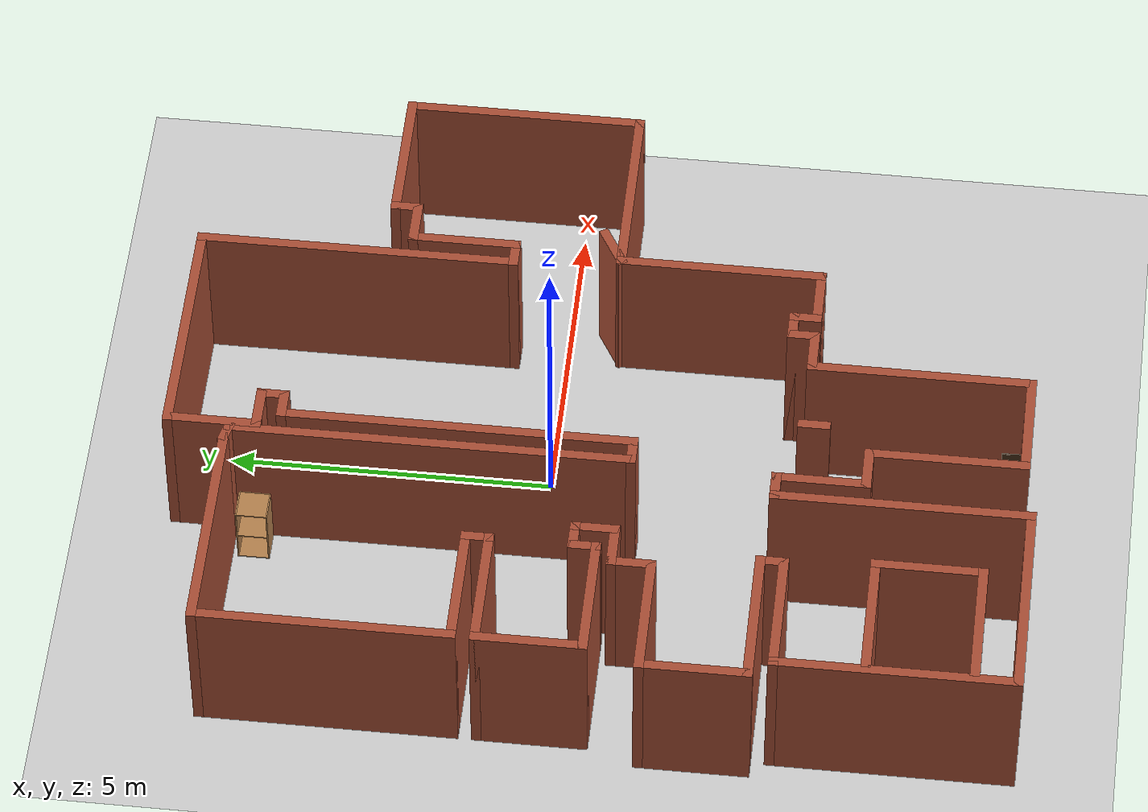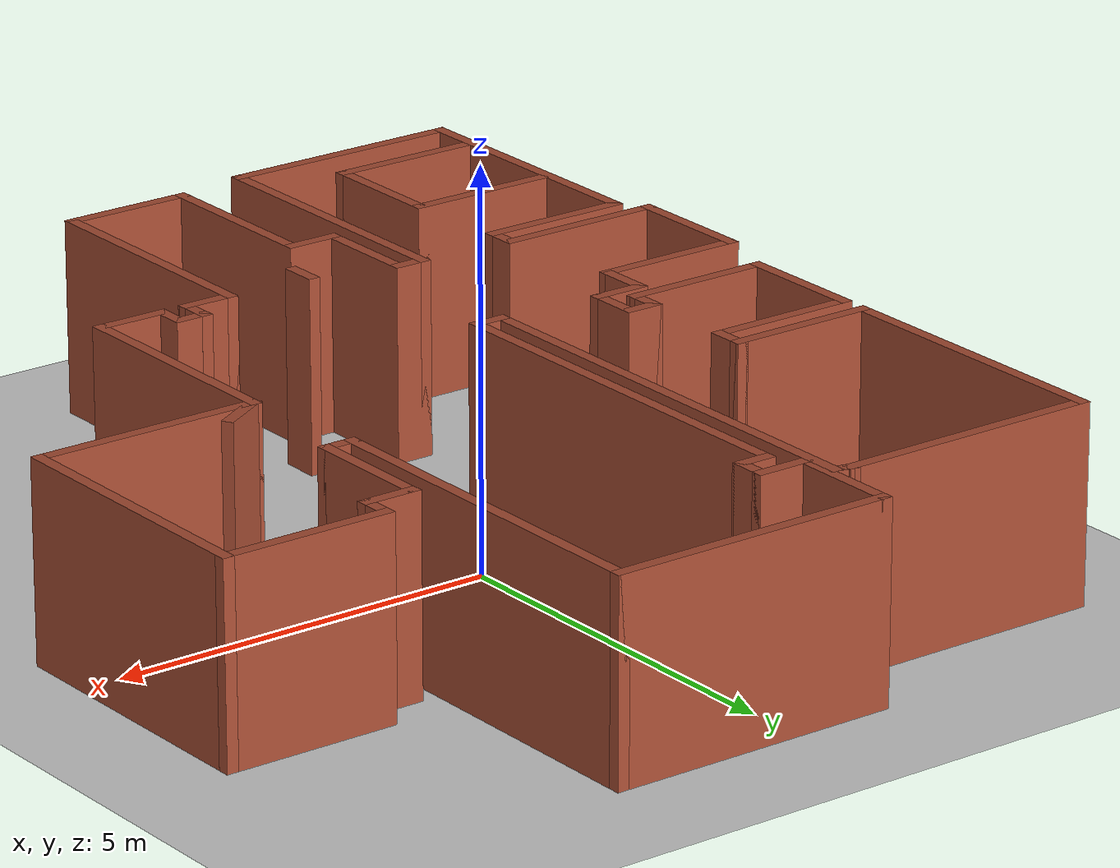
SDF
<sdf version="1.6">
 <world name="default">
  <light name="sun" type="directional">
   <pose>0 0 10 0 -0 0</pose>
   <diffuse>0.8 0.8 0.8 1</diffuse>
   <specular>0.2 0.2 0.2 1</specular>
   <attenuation>
    <range>1000</range>
    <constant>0.9</constant>
    <linear>0.01</linear>
    <quadratic>0.001</quadratic>
   </attenuation>
   <direction>-0.5 0.1 -0.9</direction>
  </light>
  <model name="ground_plane">
   <static>1</static>
   <link name="link">
    <collision name="collision">
     <geometry><plane><normal>0 0 1</normal><size>100 100</size></plane></geometry>
     <surface>
      <contact><collide_bitmask>65535</collide_bitmask></contact>
      <friction><ode><mu>100</mu><mu2>50</mu2></ode></friction>
     </surface>
    </collision>
    <visual name="visual">
     <cast_shadows>0</cast_shadows>
     <geometry><plane><normal>0 0 1</normal><size>100 100</size></plane></geometry>
     <material>
      <script><uri>file://media/materials/scripts/gazebo.material</uri><name>Gazebo/Grey</name></script>
     </material>
    </visual>
   </link>
  </model>
  <gravity>0 0 -9.8</gravity>
  <magnetic_field>6e-06 2.3e-05 -4.2e-05</magnetic_field>
  <atmosphere type="adiabatic"/>
  <physics name="default_physics" default="0" type="ode">
   <max_step_size>0.001</max_step_size>
   <real_time_factor>1</real_time_factor>
   <real_time_update_rate>1000</real_time_update_rate>
  </physics>
  <scene><ambient>0.4 0.4 0.4 1</ambient><background>0.7 0.7 0.7 1</background><shadows>1</shadows></scene>
  <audio><device>default</device></audio>
  <spherical_coordinates>
   <surface_model>EARTH_WGS84</surface_model>
   <latitude_deg>0</latitude_deg>
   <longitude_deg>0</longitude_deg>
   <elevation>0</elevation>
   <heading_deg>0</heading_deg>
  </spherical_coordinates>
  <model name="map_100">
   <pose>0.167545 -0.862773 0 0 -0 0</pose>
   <link name="Wall_0">
    <collision name="Wall_0_Collision">
     <geometry><box><size>3.5 0.15 2.5</size></box></geometry>
     <pose>0 0 1.25 0 -0 0</pose>
    </collision>
    <visual name="Wall_0_Visual">
     <pose>0 0 1.25 0 -0 0</pose>
     <geometry><box><size>3.5 0.15 2.5</size></box></geometry>
     <material>
      <script><uri>file://media/materials/scripts/gazebo.material</uri><name>Gazebo/Bricks</name></script>
      <ambient>1 1 1 1</ambient>
     </material>
     <meta><layer>0</layer></meta>
    </visual>
    <pose>-3.35 5.65 0 0 -0 3.14159</pose>
   </link>
   <link name="Wall_10">
    <collision name="Wall_10_Collision">
     <geometry><box><size>0.5 0.15 2.5</size></box></geometry>
     <pose>0 0 1.25 0 -0 0</pose>
    </collision>
    <visual name="Wall_10_Visual">
     <pose>0 0 1.25 0 -0 0</pose>
     <geometry><box><size>0.5 0.15 2.5</size></box></geometry>
     <material>
      <script><uri>file://media/materials/scripts/gazebo.material</uri><name>Gazebo/Bricks</name></script>
      <ambient>1 1 1 1</ambient>
     </material>
     <meta><layer>0</layer></meta>
    </visual>
    <pose>-3.175 1.625 0 0 -0 -1.5708</pose>
   </link>
   <link name="Wall_11">
    <collision name="Wall_11_Collision">
     <geometry><box><size>2 0.15 2.5</size></box></geometry>
     <pose>0 0 1.25 0 -0 0</pose>
    </collision>
    <visual name="Wall_11_Visual">
     <pose>0 0 1.25 0 -0 0</pose>
     <geometry><box><size>2 0.15 2.5</size></box></geometry>
     <material>
      <script><uri>file://media/materials/scripts/gazebo.material</uri><name>Gazebo/Bricks</name></script>
      <ambient>1 1 1 1</ambient>
     </material>
     <meta><layer>0</layer></meta>
    </visual>
    <pose>-4.1 1.45 0 0 -0 3.14159</pose>
   </link>
   <link name="Wall_12">
    <collision name="Wall_12_Collision">
     <geometry><box><size>1.75 0.15 2.5</size></box></geometry>
     <pose>0 0 1.25 0 -0 0</pose>
    </collision>
    <visual name="Wall_12_Visual">
     <pose>0 0 1.25 0 -0 0</pose>
     <geometry><box><size>1.75 0.15 2.5</size></box></geometry>
     <material>
      <script><uri>file://media/materials/scripts/gazebo.material</uri><name>Gazebo/Bricks</name></script>
      <ambient>1 1 1 1</ambient>
     </material>
     <meta><layer>0</layer></meta>
    </visual>
    <pose>-5.025 0.65 0 0 -0 -1.5708</pose>
   </link>
   <link name="Wall_13">
    <collision name="Wall_13_Collision">
     <geometry><box><size>2 0.15 2.5</size></box></geometry>
     <pose>0 0 1.25 0 -0 0</pose>
    </collision>
    <visual name="Wall_13_Visual">
     <pose>0 0 1.25 0 -0 0</pose>
     <geometry><box><size>2 0.15 2.5</size></box></geometry>
     <material>
      <script><uri>file://media/materials/scripts/gazebo.material</uri><name>Gazebo/Bricks</name></script>
      <ambient>1 1 1 1</ambient>
     </material>
     <meta><layer>0</layer></meta>
    </visual>
    <pose>-4.1 -0.15 0 0 -0 0</pose>
   </link>
   <link name="Wall_14">
    <collision name="Wall_14_Collision">
     <geometry><box><size>0.5 0.15 2.5</size></box></geometry>
     <pose>0 0 1.25 0 -0 0</pose>
    </collision>
    <visual name="Wall_14_Visual">
     <pose>0 0 1.25 0 -0 0</pose>
     <geometry><box><size>0.5 0.15 2.5</size></box></geometry>
     <material>
      <script><uri>file://media/materials/scripts/gazebo.material</uri><name>Gazebo/Bricks</name></script>
      <ambient>1 1 1 1</ambient>
     </material>
     <meta><layer>0</layer></meta>
    </visual>
    <pose>-3.175 0.025 0 0 -0 1.5708</pose>
   </link>
   <link name="Wall_15">
    <collision name="Wall_15_Collision">
     <geometry><box><size>0.5 0.15 2.5</size></box></geometry>
     <pose>0 0 1.25 0 -0 0</pose>
    </collision>
    <visual name="Wall_15_Visual">
     <pose>0 0 1.25 0 -0 0</pose>
     <geometry><box><size>0.5 0.15 2.5</size></box></geometry>
     <material>
      <script><uri>file://media/materials/scripts/gazebo.material</uri><name>Gazebo/Bricks</name></script>
      <ambient>1 1 1 1</ambient>
     </material>
     <meta><layer>0</layer></meta>
    </visual>
    <pose>-3 0.2 0 0 -0 0</pose>
   </link>
   <link name="Wall_16">
    <collision name="Wall_16_Collision">
     <geometry><box><size>0.75 0.15 2.5</size></box></geometry>
     <pose>0 0 1.25 0 -0 0</pose>
    </collision>
    <visual name="Wall_16_Visual">
     <pose>0 0 1.25 0 -0 0</pose>
     <geometry><box><size>0.75 0.15 2.5</size></box></geometry>
     <material>
      <script><uri>file://media/materials/scripts/gazebo.material</uri><name>Gazebo/Bricks</name></script>
      <ambient>1 1 1 1</ambient>
     </material>
     <meta><layer>0</layer></meta>
    </visual>
    <pose>-2.825 -0.1 0 0 -0 -1.5708</pose>
   </link>
   <link name="Wall_17">
    <collision name="Wall_17_Collision">
     <geometry><box><size>0.75 0.15 2.5</size></box></geometry>
     <pose>0 0 1.25 0 -0 0</pose>
    </collision>
    <visual name="Wall_17_Visual">
     <pose>0 0 1.25 0 -0 0</pose>
     <geometry><box><size>0.75 0.15 2.5</size></box></geometry>
     <material>
      <script><uri>file://media/materials/scripts/gazebo.material</uri><name>Gazebo/Bricks</name></script>
      <ambient>1 1 1 1</ambient>
     </material>
     <meta><layer>0</layer></meta>
    </visual>
    <pose>-3.125 -0.4 0 0 -0 3.14159</pose>
   </link>
   <link name="Wall_18">
    <collision name="Wall_18_Collision">
     <geometry><box><size>0.75 0.15 2.5</size></box></geometry>
     <pose>0 0 1.25 0 -0 0</pose>
    </collision>
    <visual name="Wall_18_Visual">
     <pose>0 0 1.25 0 -0 0</pose>
     <geometry><box><size>0.75 0.15 2.5</size></box></geometry>
     <material>
      <script><uri>file://media/materials/scripts/gazebo.material</uri><name>Gazebo/Bricks</name></script>
      <ambient>1 1 1 1</ambient>
     </material>
     <meta><layer>0</layer></meta>
    </visual>
    <pose>-3.425 -0.7 0 0 -0 -1.5708</pose>
   </link>
   <link name="Wall_19">
    <collision name="Wall_19_Collision">
     <geometry><box><size>2 0.15 2.5</size></box></geometry>
     <pose>0 0 1.25 0 -0 0</pose>
    </collision>
    <visual name="Wall_19_Visual">
     <pose>0 0 1.25 0 -0 0</pose>
     <geometry><box><size>2 0.15 2.5</size></box></geometry>
     <material>
      <script><uri>file://media/materials/scripts/gazebo.material</uri><name>Gazebo/Bricks</name></script>
      <ambient>1 1 1 1</ambient>
     </material>
     <meta><layer>0</layer></meta>
    </visual>
    <pose>-4.35 -1 0 0 -0 3.14159</pose>
   </link>
   <link name="Wall_20">
    <collision name="Wall_20_Collision">
     <geometry><box><size>1.75 0.15 2.5</size></box></geometry>
     <pose>0 0 1.25 0 -0 0</pose>
    </collision>
    <visual name="Wall_20_Visual">
     <pose>0 0 1.25 0 -0 0</pose>
     <geometry><box><size>1.75 0.15 2.5</size></box></geometry>
     <material>
      <script><uri>file://media/materials/scripts/gazebo.material</uri><name>Gazebo/Bricks</name></script>
      <ambient>1 1 1 1</ambient>
     </material>
     <meta><layer>0</layer></meta>
    </visual>
    <pose>-5.275 -1.8 0 0 -0 -1.5708</pose>
   </link>
   <link name="Wall_21">
    <collision name="Wall_21_Collision">
     <geometry><box><size>2.25 0.15 2.5</size></box></geometry>
     <pose>0 0 1.25 0 -0 0</pose>
    </collision>
    <visual name="Wall_21_Visual">
     <pose>0 0 1.25 0 -0 0</pose>
     <geometry><box><size>2.25 0.15 2.5</size></box></geometry>
     <material>
      <script><uri>file://media/materials/scripts/gazebo.material</uri><name>Gazebo/Bricks</name></script>
      <ambient>1 1 1 1</ambient>
     </material>
     <meta><layer>0</layer></meta>
    </visual>
    <pose>-4.225 -2.6 0 0 -0 0</pose>
   </link>
   <link name="Wall_22">
    <collision name="Wall_22_Collision">
     <geometry><box><size>0.5 0.15 2.5</size></box></geometry>
     <pose>0 0 1.25 0 -0 0</pose>
    </collision>
    <visual name="Wall_22_Visual">
     <pose>0 0 1.25 0 -0 0</pose>
     <geometry><box><size>0.5 0.15 2.5</size></box></geometry>
     <material>
      <script><uri>file://media/materials/scripts/gazebo.material</uri><name>Gazebo/Bricks</name></script>
      <ambient>1 1 1 1</ambient>
     </material>
     <meta><layer>0</layer></meta>
    </visual>
    <pose>-3.175 -2.775 0 0 -0 -1.5708</pose>
   </link>
   <link name="Wall_23">
    <collision name="Wall_23_Collision">
     <geometry><box><size>2 0.15 2.5</size></box></geometry>
     <pose>0 0 1.25 0 -0 0</pose>
    </collision>
    <visual name="Wall_23_Visual">
     <pose>0 0 1.25 0 -0 0</pose>
     <geometry><box><size>2 0.15 2.5</size></box></geometry>
     <material>
      <script><uri>file://media/materials/scripts/gazebo.material</uri><name>Gazebo/Bricks</name></script>
      <ambient>1 1 1 1</ambient>
     </material>
     <meta><layer>0</layer></meta>
    </visual>
    <pose>-4.1 -2.95 0 0 -0 3.14159</pose>
   </link>
   <link name="Wall_24">
    <collision name="Wall_24_Collision">
     <geometry><box><size>3.75 0.15 2.5</size></box></geometry>
     <pose>0 0 1.25 0 -0 0</pose>
    </collision>
    <visual name="Wall_24_Visual">
     <pose>0 0 1.25 0 -0 0</pose>
     <geometry><box><size>3.75 0.15 2.5</size></box></geometry>
     <material>
      <script><uri>file://media/materials/scripts/gazebo.material</uri><name>Gazebo/Bricks</name></script>
      <ambient>1 1 1 1</ambient>
     </material>
     <meta><layer>0</layer></meta>
    </visual>
    <pose>-5.025 -4.75 0 0 -0 -1.5708</pose>
   </link>
   <link name="Wall_25">
    <collision name="Wall_25_Collision">
     <geometry><box><size>3.25 0.15 2.5</size></box></geometry>
     <pose>0 0 1.25 0 -0 0</pose>
    </collision>
    <visual name="Wall_25_Visual">
     <pose>0 0 1.25 0 -0 0</pose>
     <geometry><box><size>3.25 0.15 2.5</size></box></geometry>
     <material>
      <script><uri>file://media/materials/scripts/gazebo.material</uri><name>Gazebo/Bricks</name></script>
      <ambient>1 1 1 1</ambient>
     </material>
     <meta><layer>0</layer></meta>
    </visual>
    <pose>-3.475 -6.55 0 0 -0 0</pose>
   </link>
   <link name="Wall_26">
    <collision name="Wall_26_Collision">
     <geometry><box><size>4 0.15 2.5</size></box></geometry>
     <pose>0 0 1.25 0 -0 0</pose>
    </collision>
    <visual name="Wall_26_Visual">
     <pose>0 0 1.25 0 -0 0</pose>
     <geometry><box><size>4 0.15 2.5</size></box></geometry>
     <material>
      <script><uri>file://media/materials/scripts/gazebo.material</uri><name>Gazebo/Bricks</name></script>
      <ambient>1 1 1 1</ambient>
     </material>
     <meta><layer>0</layer></meta>
    </visual>
    <pose>-1.925 -4.625 0 0 -0 1.5708</pose>
   </link>
   <link name="Wall_27">
    <collision name="Wall_27_Collision">
     <geometry><box><size>0.5 0.15 2.5</size></box></geometry>
     <pose>0 0 1.25 0 -0 0</pose>
    </collision>
    <visual name="Wall_27_Visual">
     <pose>0 0 1.25 0 -0 0</pose>
     <geometry><box><size>0.5 0.15 2.5</size></box></geometry>
     <material>
      <script><uri>file://media/materials/scripts/gazebo.material</uri><name>Gazebo/Bricks</name></script>
      <ambient>1 1 1 1</ambient>
     </material>
     <meta><layer>0</layer></meta>
    </visual>
    <pose>-1.75 -2.7 0 0 -0 0</pose>
   </link>
   <link name="Wall_28">
    <collision name="Wall_28_Collision">
     <geometry><box><size>1.5 0.15 2.5</size></box></geometry>
     <pose>0 0 1.25 0 -0 0</pose>
    </collision>
    <visual name="Wall_28_Visual">
     <pose>0 0 1.25 0 -0 0</pose>
     <geometry><box><size>1.5 0.15 2.5</size></box></geometry>
     <material>
      <script><uri>file://media/materials/scripts/gazebo.material</uri><name>Gazebo/Bricks</name></script>
      <ambient>1 1 1 1</ambient>
     </material>
     <meta><layer>0</layer></meta>
    </visual>
    <pose>-1.575 -3.375 0 0 -0 -1.5708</pose>
   </link>
   <link name="Wall_29">
    <collision name="Wall_29_Collision">
     <geometry><box><size>0.75 0.15 2.5</size></box></geometry>
     <pose>0 0 1.25 0 -0 0</pose>
    </collision>
    <visual name="Wall_29_Visual">
     <pose>0 0 1.25 0 -0 0</pose>
     <geometry><box><size>0.75 0.15 2.5</size></box></geometry>
     <material>
      <script><uri>file://media/materials/scripts/gazebo.material</uri><name>Gazebo/Bricks</name></script>
      <ambient>1 1 1 1</ambient>
     </material>
     <meta><layer>0</layer></meta>
    </visual>
    <pose>-1.275 -4.05 0 0 -0 0</pose>
   </link>
   <link name="Wall_30">
    <collision name="Wall_30_Collision">
     <geometry><box><size>2.5 0.15 2.5</size></box></geometry>
     <pose>0 0 1.25 0 -0 0</pose>
    </collision>
    <visual name="Wall_30_Visual">
     <pose>0 0 1.25 0 -0 0</pose>
     <geometry><box><size>2.5 0.15 2.5</size></box></geometry>
     <material>
      <script><uri>file://media/materials/scripts/gazebo.material</uri><name>Gazebo/Bricks</name></script>
      <ambient>1 1 1 1</ambient>
     </material>
     <meta><layer>0</layer></meta>
    </visual>
    <pose>-0.975 -5.225 0 0 -0 -1.5708</pose>
   </link>
   <link name="Wall_31">
    <collision name="Wall_31_Collision">
     <geometry><box><size>1.75 0.15 2.5</size></box></geometry>
     <pose>0 0 1.25 0 -0 0</pose>
    </collision>
    <visual name="Wall_31_Visual">
     <pose>0 0 1.25 0 -0 0</pose>
     <geometry><box><size>1.75 0.15 2.5</size></box></geometry>
     <material>
      <script><uri>file://media/materials/scripts/gazebo.material</uri><name>Gazebo/Bricks</name></script>
      <ambient>1 1 1 1</ambient>
     </material>
     <meta><layer>0</layer></meta>
    </visual>
    <pose>-0.175 -6.4 0 0 -0 0</pose>
   </link>
   <link name="Wall_32">
    <collision name="Wall_32_Collision">
     <geometry><box><size>3.5 0.15 2.5</size></box></geometry>
     <pose>0 0 1.25 0 -0 0</pose>
    </collision>
    <visual name="Wall_32_Visual">
     <pose>0 0 1.25 0 -0 0</pose>
     <geometry><box><size>3.5 0.15 2.5</size></box></geometry>
     <material>
      <script><uri>file://media/materials/scripts/gazebo.material</uri><name>Gazebo/Bricks</name></script>
      <ambient>1 1 1 1</ambient>
     </material>
     <meta><layer>0</layer></meta>
    </visual>
    <pose>0.625 -4.725 0 0 -0 1.5708</pose>
   </link>
   <link name="Wall_33">
    <collision name="Wall_33_Collision">
     <geometry><box><size>0.75 0.15 2.5</size></box></geometry>
     <pose>0 0 1.25 0 -0 0</pose>
    </collision>
    <visual name="Wall_33_Visual">
     <pose>0 0 1.25 0 -0 0</pose>
     <geometry><box><size>0.75 0.15 2.5</size></box></geometry>
     <material>
      <script><uri>file://media/materials/scripts/gazebo.material</uri><name>Gazebo/Bricks</name></script>
      <ambient>1 1 1 1</ambient>
     </material>
     <meta><layer>0</layer></meta>
    </visual>
    <pose>0.925 -3.05 0 0 -0 0</pose>
   </link>
   <link name="Wall_34">
    <collision name="Wall_34_Collision">
     <geometry><box><size>0.5 0.15 2.5</size></box></geometry>
     <pose>0 0 1.25 0 -0 0</pose>
    </collision>
    <visual name="Wall_34_Visual">
     <pose>0 0 1.25 0 -0 0</pose>
     <geometry><box><size>0.5 0.15 2.5</size></box></geometry>
     <material>
      <script><uri>file://media/materials/scripts/gazebo.material</uri><name>Gazebo/Bricks</name></script>
      <ambient>1 1 1 1</ambient>
     </material>
     <meta><layer>0</layer></meta>
    </visual>
    <pose>1.225 -2.875 0 0 -0 1.5708</pose>
   </link>
   <link name="Wall_35">
    <collision name="Wall_35_Collision">
     <geometry><box><size>0.5 0.15 2.5</size></box></geometry>
     <pose>0 0 1.25 0 -0 0</pose>
    </collision>
    <visual name="Wall_35_Visual">
     <pose>0 0 1.25 0 -0 0</pose>
     <geometry><box><size>0.5 0.15 2.5</size></box></geometry>
     <material>
      <script><uri>file://media/materials/scripts/gazebo.material</uri><name>Gazebo/Bricks</name></script>
      <ambient>1 1 1 1</ambient>
     </material>
     <meta><layer>0</layer></meta>
    </visual>
    <pose>1.4 -2.7 0 0 -0 0</pose>
   </link>
   <link name="Wall_36">
    <collision name="Wall_36_Collision">
     <geometry><box><size>0.5 0.15 2.5</size></box></geometry>
     <pose>0 0 1.25 0 -0 0</pose>
    </collision>
    <visual name="Wall_36_Visual">
     <pose>0 0 1.25 0 -0 0</pose>
     <geometry><box><size>0.5 0.15 2.5</size></box></geometry>
     <material>
      <script><uri>file://media/materials/scripts/gazebo.material</uri><name>Gazebo/Bricks</name></script>
      <ambient>1 1 1 1</ambient>
     </material>
     <meta><layer>0</layer></meta>
    </visual>
    <pose>1.575 -2.875 0 0 -0 -1.5708</pose>
   </link>
   <link name="Wall_37">
    <collision name="Wall_37_Collision">
     <geometry><box><size>1 0.15 2.5</size></box></geometry>
     <pose>0 0 1.25 0 -0 0</pose>
    </collision>
    <visual name="Wall_37_Visual">
     <pose>0 0 1.25 0 -0 0</pose>
     <geometry><box><size>1 0.15 2.5</size></box></geometry>
     <material>
      <script><uri>file://media/materials/scripts/gazebo.material</uri><name>Gazebo/Bricks</name></script>
      <ambient>1 1 1 1</ambient>
     </material>
     <meta><layer>0</layer></meta>
    </visual>
    <pose>2 -3.05 0 0 -0 0</pose>
   </link>
   <link name="Wall_38">
    <collision name="Wall_38_Collision">
     <geometry><box><size>3.25 0.15 2.5</size></box></geometry>
     <pose>0 0 1.25 0 -0 0</pose>
    </collision>
    <visual name="Wall_38_Visual">
     <pose>0 0 1.25 0 -0 0</pose>
     <geometry><box><size>3.25 0.15 2.5</size></box></geometry>
     <material>
      <script><uri>file://media/materials/scripts/gazebo.material</uri><name>Gazebo/Bricks</name></script>
      <ambient>1 1 1 1</ambient>
     </material>
     <meta><layer>0</layer></meta>
    </visual>
    <pose>2.425 -1.5 0 0 -0 1.5708</pose>
   </link>
   <link name="Wall_39">
    <collision name="Wall_39_Collision">
     <geometry><box><size>3 0.15 2.5</size></box></geometry>
     <pose>0 0 1.25 0 -0 0</pose>
    </collision>
    <visual name="Wall_39_Visual">
     <pose>0 0 1.25 0 -0 0</pose>
     <geometry><box><size>3 0.15 2.5</size></box></geometry>
     <material>
      <script><uri>file://media/materials/scripts/gazebo.material</uri><name>Gazebo/Bricks</name></script>
      <ambient>1 1 1 1</ambient>
     </material>
     <meta><layer>0</layer></meta>
    </visual>
    <pose>3.85 0.05 0 0 -0 0</pose>
   </link>
   <link name="Wall_40">
    <collision name="Wall_40_Collision">
     <geometry><box><size>3.75 0.15 2.5</size></box></geometry>
     <pose>0 0 1.25 0 -0 0</pose>
    </collision>
    <visual name="Wall_40_Visual">
     <pose>0 0 1.25 0 -0 0</pose>
     <geometry><box><size>3.75 0.15 2.5</size></box></geometry>
     <material>
      <script><uri>file://media/materials/scripts/gazebo.material</uri><name>Gazebo/Bricks</name></script>
      <ambient>1 1 1 1</ambient>
     </material>
     <meta><layer>0</layer></meta>
    </visual>
    <pose>5.275 1.85 0 0 -0 1.5708</pose>
   </link>
   <link name="Wall_41">
    <collision name="Wall_41_Collision">
     <geometry><box><size>2.25 0.15 2.5</size></box></geometry>
     <pose>0 0 1.25 0 -0 0</pose>
    </collision>
    <visual name="Wall_41_Visual">
     <pose>0 0 1.25 0 -0 0</pose>
     <geometry><box><size>2.25 0.15 2.5</size></box></geometry>
     <material>
      <script><uri>file://media/materials/scripts/gazebo.material</uri><name>Gazebo/Bricks</name></script>
      <ambient>1 1 1 1</ambient>
     </material>
     <meta><layer>0</layer></meta>
    </visual>
    <pose>4.225 3.65 0 0 -0 3.14159</pose>
   </link>
   <link name="Wall_42">
    <collision name="Wall_42_Collision">
     <geometry><box><size>0.5 0.15 2.5</size></box></geometry>
     <pose>0 0 1.25 0 -0 0</pose>
    </collision>
    <visual name="Wall_42_Visual">
     <pose>0 0 1.25 0 -0 0</pose>
     <geometry><box><size>0.5 0.15 2.5</size></box></geometry>
     <material>
      <script><uri>file://media/materials/scripts/gazebo.material</uri><name>Gazebo/Bricks</name></script>
      <ambient>1 1 1 1</ambient>
     </material>
     <meta><layer>0</layer></meta>
    </visual>
    <pose>3.175 3.475 0 0 -0 -1.5708</pose>
   </link>
   <link name="Wall_43">
    <collision name="Wall_43_Collision">
     <geometry><box><size>0.75 0.15 2.5</size></box></geometry>
     <pose>0 0 1.25 0 -0 0</pose>
    </collision>
    <visual name="Wall_43_Visual">
     <pose>0 0 1.25 0 -0 0</pose>
     <geometry><box><size>0.75 0.15 2.5</size></box></geometry>
     <material>
      <script><uri>file://media/materials/scripts/gazebo.material</uri><name>Gazebo/Bricks</name></script>
      <ambient>1 1 1 1</ambient>
     </material>
     <meta><layer>0</layer></meta>
    </visual>
    <pose>2.875 3.3 0 0 -0 3.14159</pose>
   </link>
   <link name="Wall_44">
    <collision name="Wall_44_Collision">
     <geometry><box><size>1.75 0.15 2.5</size></box></geometry>
     <pose>0 0 1.25 0 -0 0</pose>
    </collision>
    <visual name="Wall_44_Visual">
     <pose>0 0 1.25 0 -0 0</pose>
     <geometry><box><size>1.75 0.15 2.5</size></box></geometry>
     <material>
      <script><uri>file://media/materials/scripts/gazebo.material</uri><name>Gazebo/Bricks</name></script>
      <ambient>1 1 1 1</ambient>
     </material>
     <meta><layer>0</layer></meta>
    </visual>
    <pose>2.575 2.5 0 0 -0 -1.5708</pose>
   </link>
   <link name="Wall_45">
    <collision name="Wall_45_Collision">
     <geometry><box><size>0.5 0.15 2.5</size></box></geometry>
     <pose>0 0 1.25 0 -0 0</pose>
    </collision>
    <visual name="Wall_45_Visual">
     <pose>0 0 1.25 0 -0 0</pose>
     <geometry><box><size>0.5 0.15 2.5</size></box></geometry>
     <material>
      <script><uri>file://media/materials/scripts/gazebo.material</uri><name>Gazebo/Bricks</name></script>
      <ambient>1 1 1 1</ambient>
     </material>
     <meta><layer>0</layer></meta>
    </visual>
    <pose>2.4 1.7 0 0 -0 3.14159</pose>
   </link>
   <link name="Wall_46">
    <collision name="Wall_46_Collision">
     <geometry><box><size>5 0.15 2.5</size></box></geometry>
     <pose>0 0 1.25 0 -0 0</pose>
    </collision>
    <visual name="Wall_46_Visual">
     <pose>0 0 1.25 0 -0 0</pose>
     <geometry><box><size>5 0.15 2.5</size></box></geometry>
     <material>
      <script><uri>file://media/materials/scripts/gazebo.material</uri><name>Gazebo/Bricks</name></script>
      <ambient>1 1 1 1</ambient>
     </material>
     <meta><layer>0</layer></meta>
    </visual>
    <pose>2.225 4.125 0 0 -0 1.5708</pose>
   </link>
   <link name="Wall_47">
    <collision name="Wall_47_Collision">
     <geometry><box><size>3.75 0.15 2.5</size></box></geometry>
     <pose>0 0 1.25 0 -0 0</pose>
    </collision>
    <visual name="Wall_47_Visual">
     <pose>0 0 1.25 0 -0 0</pose>
     <geometry><box><size>3.75 0.15 2.5</size></box></geometry>
     <material>
      <script><uri>file://media/materials/scripts/gazebo.material</uri><name>Gazebo/Bricks</name></script>
      <ambient>1 1 1 1</ambient>
     </material>
     <meta><layer>0</layer></meta>
    </visual>
    <pose>0.425 6.55 0 0 -0 3.14159</pose>
   </link>
   <link name="Wall_48">
    <collision name="Wall_48_Collision">
     <geometry><box><size>1.5 0.15 2.5</size></box></geometry>
     <pose>0 0 1.25 0 -0 0</pose>
    </collision>
    <visual name="Wall_48_Visual">
     <pose>0 0 1.25 0 -0 0</pose>
     <geometry><box><size>1.5 0.15 2.5</size></box></geometry>
     <material>
      <script><uri>file://media/materials/scripts/gazebo.material</uri><name>Gazebo/Bricks</name></script>
      <ambient>1 1 1 1</ambient>
     </material>
     <meta><layer>0</layer></meta>
    </visual>
    <pose>-1.375 5.875 0 0 -0 -1.5708</pose>
   </link>
   <link name="Wall_49">
    <collision name="Wall_49_Collision">
     <geometry><box><size>0.75 0.15 2.5</size></box></geometry>
     <pose>0 0 1.25 0 -0 0</pose>
    </collision>
    <visual name="Wall_49_Visual">
     <pose>0 0 1.25 0 -0 0</pose>
     <geometry><box><size>0.75 0.15 2.5</size></box></geometry>
     <material>
      <script><uri>file://media/materials/scripts/gazebo.material</uri><name>Gazebo/Bricks</name></script>
      <ambient>1 1 1 1</ambient>
     </material>
     <meta><layer>0</layer></meta>
    </visual>
    <pose>-1.075 5.2 0 0 -0 0</pose>
   </link>
   <link name="Wall_50">
    <collision name="Wall_50_Collision">
     <geometry><box><size>0.5 0.15 2.5</size></box></geometry>
     <pose>0 0 1.25 0 -0 0</pose>
    </collision>
    <visual name="Wall_50_Visual">
     <pose>0 0 1.25 0 -0 0</pose>
     <geometry><box><size>0.5 0.15 2.5</size></box></geometry>
     <material>
      <script><uri>file://media/materials/scripts/gazebo.material</uri><name>Gazebo/Bricks</name></script>
      <ambient>1 1 1 1</ambient>
     </material>
     <meta><layer>0</layer></meta>
    </visual>
    <pose>-0.775 5.025 0 0 -0 -1.5708</pose>
   </link>
   <link name="Wall_51">
    <collision name="Wall_51_Collision">
     <geometry><box><size>0.5 0.15 2.5</size></box></geometry>
     <pose>0 0 1.25 0 -0 0</pose>
    </collision>
    <visual name="Wall_51_Visual">
     <pose>0 0 1.25 0 -0 0</pose>
     <geometry><box><size>0.5 0.15 2.5</size></box></geometry>
     <material>
      <script><uri>file://media/materials/scripts/gazebo.material</uri><name>Gazebo/Bricks</name></script>
      <ambient>1 1 1 1</ambient>
     </material>
     <meta><layer>0</layer></meta>
    </visual>
    <pose>-0.95 4.85 0 0 -0 3.14159</pose>
   </link>
   <link name="Wall_52">
    <collision name="Wall_52_Collision">
     <geometry><box><size>5.5 0.15 2.5</size></box></geometry>
     <pose>0 0 1.25 0 -0 0</pose>
    </collision>
    <visual name="Wall_52_Visual">
     <pose>0 0 1.25 0 -0 0</pose>
     <geometry><box><size>5.5 0.15 2.5</size></box></geometry>
     <material>
      <script><uri>file://media/materials/scripts/gazebo.material</uri><name>Gazebo/Bricks</name></script>
      <ambient>1 1 1 1</ambient>
     </material>
     <meta><layer>0</layer></meta>
    </visual>
    <pose>-1.125 2.175 0 0 -0 -1.5708</pose>
   </link>
   <link name="Wall_53">
    <collision name="Wall_53_Collision">
     <geometry><box><size>0.5 0.15 2.5</size></box></geometry>
     <pose>0 0 1.25 0 -0 0</pose>
    </collision>
    <visual name="Wall_53_Visual">
     <pose>0 0 1.25 0 -0 0</pose>
     <geometry><box><size>0.5 0.15 2.5</size></box></geometry>
     <material>
      <script><uri>file://media/materials/scripts/gazebo.material</uri><name>Gazebo/Bricks</name></script>
      <ambient>1 1 1 1</ambient>
     </material>
     <meta><layer>0</layer></meta>
    </visual>
    <pose>-1.3 -0.5 0 0 -0 3.14159</pose>
   </link>
   <link name="Wall_54">
    <collision name="Wall_54_Collision">
     <geometry><box><size>6.25 0.15 2.5</size></box></geometry>
     <pose>0 0 1.25 0 -0 0</pose>
    </collision>
    <visual name="Wall_54_Visual">
     <pose>0 0 1.25 0 -0 0</pose>
     <geometry><box><size>6.25 0.15 2.5</size></box></geometry>
     <material>
      <script><uri>file://media/materials/scripts/gazebo.material</uri><name>Gazebo/Bricks</name></script>
      <ambient>1 1 1 1</ambient>
     </material>
     <meta><layer>0</layer></meta>
    </visual>
    <pose>-1.475 2.55 0 0 -0 1.5708</pose>
   </link>
   <link name="Wall_55">
    <collision name="Wall_55_Collision">
     <geometry><box><size>0.356155 0.15 2.5</size></box></geometry>
     <pose>0 0 1.25 0 -0 0</pose>
    </collision>
    <visual name="Wall_55_Visual">
     <pose>0 0 1.25 0 -0 0</pose>
     <geometry><box><size>0.356155 0.15 2.5</size></box></geometry>
     <material>
      <script><uri>file://media/materials/scripts/gazebo.material</uri><name>Gazebo/Bricks</name></script>
      <ambient>1 1 1 1</ambient>
     </material>
     <meta><layer>0</layer></meta>
    </visual>
    <pose>-1.575 5.625 0 0 -0 2.89661</pose>
   </link>
   <link name="Wall_57">
    <collision name="Wall_57_Collision">
     <geometry><box><size>0.75 0.15 2.5</size></box></geometry>
     <pose>0 0 1.25 0 -0 0</pose>
    </collision>
    <visual name="Wall_57_Visual">
     <pose>0 0 1.25 0 -0 0</pose>
     <geometry><box><size>0.75 0.15 2.5</size></box></geometry>
     <material>
      <script><uri>file://media/materials/scripts/gazebo.material</uri><name>Gazebo/Bricks</name></script>
      <ambient>1 1 1 1</ambient>
     </material>
     <meta><layer>0</layer></meta>
    </visual>
    <pose>2.68481 0.2 0 0 -0 0.523599</pose>
   </link>
   <link name="Wall_59">
    <collision name="Wall_59_Collision">
     <geometry><box><size>0.5 0.15 2.5</size></box></geometry>
     <pose>0 0 1.25 0 -0 0</pose>
    </collision>
    <visual name="Wall_59_Visual">
     <pose>0 0 1.25 0 -0 0</pose>
     <geometry><box><size>0.5 0.15 2.5</size></box></geometry>
     <material>
      <script><uri>file://media/materials/scripts/gazebo.material</uri><name>Gazebo/Bricks</name></script>
      <ambient>1 1 1 1</ambient>
     </material>
     <meta><layer>0</layer></meta>
    </visual>
    <pose>-0.514101 -3.17898 0 0 -0 -1.5708</pose>
   </link>
   <link name="Wall_61">
    <collision name="Wall_61_Collision">
     <geometry><box><size>2 0.15 2.5</size></box></geometry>
     <pose>0 0 1.25 0 -0 0</pose>
    </collision>
    <visual name="Wall_61_Visual">
     <pose>0 0 1.25 0 -0 0</pose>
     <geometry><box><size>2 0.15 2.5</size></box></geometry>
     <material>
      <script><uri>file://media/materials/scripts/gazebo.material</uri><name>Gazebo/Bricks</name></script>
      <ambient>1 1 1 1</ambient>
     </material>
     <meta><layer>0</layer></meta>
    </visual>
    <pose>-3.98645 -4.30559 0 0 -0 0</pose>
   </link>
   <link name="Wall_62">
    <collision name="Wall_62_Collision">
     <geometry><box><size>1.75 0.15 2.5</size></box></geometry>
     <pose>0 0 1.25 0 -0 0</pose>
    </collision>
    <visual name="Wall_62_Visual">
     <pose>0 0 1.25 0 -0 0</pose>
     <geometry><box><size>1.75 0.15 2.5</size></box></geometry>
     <material>
      <script><uri>file://media/materials/scripts/gazebo.material</uri><name>Gazebo/Bricks</name></script>
      <ambient>1 1 1 1</ambient>
     </material>
     <meta><layer>0</layer></meta>
    </visual>
    <pose>-3.06145 -5.10559 0 0 -0 -1.5708</pose>
   </link>
   <link name="Wall_63">
    <collision name="Wall_63_Collision">
     <geometry><box><size>2 0.15 2.5</size></box></geometry>
     <pose>0 0 1.25 0 -0 0</pose>
    </collision>
    <visual name="Wall_63_Visual">
     <pose>0 0 1.25 0 -0 0</pose>
     <geometry><box><size>2 0.15 2.5</size></box></geometry>
     <material>
      <script><uri>file://media/materials/scripts/gazebo.material</uri><name>Gazebo/Bricks</name></script>
      <ambient>1 1 1 1</ambient>
     </material>
     <meta><layer>0</layer></meta>
    </visual>
    <pose>-3.98645 -5.90559 0 0 -0 3.14159</pose>
   </link>
   <link name="Wall_8">
    <collision name="Wall_8_Collision">
     <geometry><box><size>4 0.15 2.5</size></box></geometry>
     <pose>0 0 1.25 0 -0 0</pose>
    </collision>
    <visual name="Wall_8_Visual">
     <pose>0 0 1.25 0 -0 0</pose>
     <geometry><box><size>4 0.15 2.5</size></box></geometry>
     <material>
      <script><uri>file://media/materials/scripts/gazebo.material</uri><name>Gazebo/Bricks</name></script>
      <ambient>1 1 1 1</ambient>
     </material>
     <meta><layer>0</layer></meta>
    </visual>
    <pose>-5.025 3.725 0 0 -0 -1.5708</pose>
   </link>
   <link name="Wall_9">
    <collision name="Wall_9_Collision">
     <geometry><box><size>2 0.15 2.5</size></box></geometry>
     <pose>0 0 1.25 0 -0 0</pose>
    </collision>
    <visual name="Wall_9_Visual">
     <pose>0 0 1.25 0 -0 0</pose>
     <geometry><box><size>2 0.15 2.5</size></box></geometry>
     <material>
      <script><uri>file://media/materials/scripts/gazebo.material</uri><name>Gazebo/Bricks</name></script>
      <ambient>1 1 1 1</ambient>
     </material>
     <meta><layer>0</layer></meta>
    </visual>
    <pose>-4.1 1.8 0 0 -0 0</pose>
   </link>
   <static>1</static>
  </model>
  <model name="cabinet">
   <static>1</static>
   <link name="cabinet_bottom_plate">
    <inertial>
     <pose>0 0 -1 0 -0 0</pose>
     <inertia><ixx>2.05</ixx><ixy>0</ixy><ixz>0</ixz><iyy>2.05</iyy><iyz>0</iyz><izz>2.05</izz></inertia>
     <mass>25</mass>
    </inertial>
    <collision name="cabinet_bottom_plate_geom">
     <pose>0 0 0.01 0 -0 0</pose>
     <geometry><box><size>0.45 0.45 0.02</size></box></geometry>
    </collision>
    <visual name="cabinet_bottom_plate_geom_visual">
     <pose>0 0 0.01 0 -0 0</pose>
     <geometry><box><size>0.45 0.45 0.02</size></box></geometry>
     <material>
      <script><uri>file://media/materials/scripts/gazebo.material</uri><name>Gazebo/Wood</name></script>
     </material>
    </visual>
    <collision name="cabinet_bottom_plate_geom_cabinet_back_plate">
     <pose>0.235 0 0.51 0 -0 0</pose>
     <geometry><box><size>0.02 0.45 1.02</size></box></geometry>
    </collision>
    <visual name="cabinet_bottom_plate_geom_cabinet_back_plate_visual">
     <pose>0.235 0 0.51 0 -0 0</pose>
     <geometry><box><size>0.02 0.45 1.02</size></box></geometry>
     <material>
      <script><uri>file://media/materials/scripts/gazebo.material</uri><name>Gazebo/Wood</name></script>
     </material>
    </visual>
    <collision name="cabinet_bottom_plate_geom_cabinet_left_plate">
     <pose>0 0.235 0.51 0 -0 0</pose>
     <geometry><box><size>0.45 0.02 1.02</size></box></geometry>
    </collision>
    <visual name="cabinet_bottom_plate_geom_cabinet_left_plate_visual">
     <pose>0 0.235 0.51 0 -0 0</pose>
     <geometry><box><size>0.45 0.02 1.02</size></box></geometry>
     <material>
      <script><uri>file://media/materials/scripts/gazebo.material</uri><name>Gazebo/Wood</name></script>
     </material>
    </visual>
    <collision name="cabinet_bottom_plate_geom_cabinet_middle_plate">
     <pose>0 0 0.51 0 -0 0</pose>
     <geometry><box><size>0.45 0.45 0.02</size></box></geometry>
    </collision>
    <visual name="cabinet_bottom_plate_geom_cabinet_middle_plate_visual">
     <pose>0 0 0.51 0 -0 0</pose>
     <geometry><box><size>0.45 0.45 0.02</size></box></geometry>
     <material>
      <script><uri>file://media/materials/scripts/gazebo.material</uri><name>Gazebo/Wood</name></script>
     </material>
    </visual>
    <collision name="cabinet_bottom_plate_geom_cabinet_right_plate">
     <pose>0 -0.235 0.51 0 -0 0</pose>
     <geometry><box><size>0.45 0.02 1.02</size></box></geometry>
    </collision>
    <visual name="cabinet_bottom_plate_geom_cabinet_right_plate_visual">
     <pose>0 -0.235 0.51 0 -0 0</pose>
     <geometry><box><size>0.45 0.02 1.02</size></box></geometry>
     <material>
      <script><uri>file://media/materials/scripts/gazebo.material</uri><name>Gazebo/Wood</name></script>
     </material>
    </visual>
    <collision name="cabinet_bottom_plate_geom_cabinet_top_plate">
     <pose>0 0 1.01 0 -0 0</pose>
     <geometry><box><size>0.45 0.45 0.02</size></box></geometry>
    </collision>
    <visual name="cabinet_bottom_plate_geom_cabinet_top_plate_visual">
     <pose>0 0 1.01 0 -0 0</pose>
     <geometry><box><size>0.45 0.45 0.02</size></box></geometry>
     <material>
      <script><uri>file://media/materials/scripts/gazebo.material</uri><name>Gazebo/Wood</name></script>
     </material>
    </visual>
   </link>
   <pose>-4.45493 4.46139 0 0 -0 0</pose>
  </model>
  <model name="cabinet_0">
   <static>1</static>
   <link name="cabinet_bottom_plate">
    <inertial>
     <pose>0 0 -1 0 -0 0</pose>
     <inertia><ixx>2.05</ixx><ixy>0</ixy><ixz>0</ixz><iyy>2.05</iyy><iyz>0</iyz><izz>2.05</izz></inertia>
     <mass>25</mass>
    </inertial>
    <collision name="cabinet_bottom_plate_geom">
     <pose>0 0 0.01 0 -0 0</pose>
     <geometry><box><size>0.45 0.45 0.02</size></box></geometry>
    </collision>
    <visual name="cabinet_bottom_plate_geom_visual">
     <pose>0 0 0.01 0 -0 0</pose>
     <geometry><box><size>0.45 0.45 0.02</size></box></geometry>
     <material>
      <script><uri>file://media/materials/scripts/gazebo.material</uri><name>Gazebo/Wood</name></script>
     </material>
    </visual>
    <collision name="cabinet_bottom_plate_geom_cabinet_back_plate">
     <pose>0.235 0 0.51 0 -0 0</pose>
     <geometry><box><size>0.02 0.45 1.02</size></box></geometry>
    </collision>
    <visual name="cabinet_bottom_plate_geom_cabinet_back_plate_visual">
     <pose>0.235 0 0.51 0 -0 0</pose>
     <geometry><box><size>0.02 0.45 1.02</size></box></geometry>
     <material>
      <script><uri>file://media/materials/scripts/gazebo.material</uri><name>Gazebo/Wood</name></script>
     </material>
    </visual>
    <collision name="cabinet_bottom_plate_geom_cabinet_left_plate">
     <pose>0 0.235 0.51 0 -0 0</pose>
     <geometry><box><size>0.45 0.02 1.02</size></box></geometry>
    </collision>
    <visual name="cabinet_bottom_plate_geom_cabinet_left_plate_visual">
     <pose>0 0.235 0.51 0 -0 0</pose>
     <geometry><box><size>0.45 0.02 1.02</size></box></geometry>
     <material>
      <script><uri>file://media/materials/scripts/gazebo.material</uri><name>Gazebo/Wood</name></script>
     </material>
    </visual>
    <collision name="cabinet_bottom_plate_geom_cabinet_middle_plate">
     <pose>0 0 0.51 0 -0 0</pose>
     <geometry><box><size>0.45 0.45 0.02</size></box></geometry>
    </collision>
    <visual name="cabinet_bottom_plate_geom_cabinet_middle_plate_visual">
     <pose>0 0 0.51 0 -0 0</pose>
     <geometry><box><size>0.45 0.45 0.02</size></box></geometry>
     <material>
      <script><uri>file://media/materials/scripts/gazebo.material</uri><name>Gazebo/Wood</name></script>
     </material>
    </visual>
    <collision name="cabinet_bottom_plate_geom_cabinet_right_plate">
     <pose>0 -0.235 0.51 0 -0 0</pose>
     <geometry><box><size>0.45 0.02 1.02</size></box></geometry>
    </collision>
    <visual name="cabinet_bottom_plate_geom_cabinet_right_plate_visual">
     <pose>0 -0.235 0.51 0 -0 0</pose>
     <geometry><box><size>0.45 0.02 1.02</size></box></geometry>
     <material>
      <script><uri>file://media/materials/scripts/gazebo.material</uri><name>Gazebo/Wood</name></script>
     </material>
    </visual>
    <collision name="cabinet_bottom_plate_geom_cabinet_top_plate">
     <pose>0 0 1.01 0 -0 0</pose>
     <geometry><box><size>0.45 0.45 0.02</size></box></geometry>
    </collision>
    <visual name="cabinet_bottom_plate_geom_cabinet_top_plate_visual">
     <pose>0 0 1.01 0 -0 0</pose>
     <geometry><box><size>0.45 0.45 0.02</size></box></geometry>
     <material>
      <script><uri>file://media/materials/scripts/gazebo.material</uri><name>Gazebo/Wood</name></script>
     </material>
    </visual>
   </link>
   <pose>-1.61737 4.39061 0 0 -0 0</pose>
  </model>
  <model name="6_Cube_StorageE">
   <link name="Wall_0">
    <pose>0 0 0.01 0 -0 0</pose>
    <inertial>
     <mass>1.6201</mass>
     <inertia><ixx>0.0119</ixx><iyy>0.0631</iyy><izz>0.0513</izz><ixy>0</ixy><ixz>0</ixz><iyz>0</iyz></inertia>
    </inertial>
    <collision name="Wall_0_Collision"><geometry><box><size>0.616 0.296 0.02</size></box></geometry></collision>
    <visual name="Wall_0_Visual">
     <geometry><box><size>0.616 0.296 0.02</size></box></geometry>
     <material>
      <script><uri>file://media/materials/scripts/gazebo.material</uri><name>Gazebo/Grey</name></script>
      <ambient>0.105882 0.0509804 0 1</ambient>
     </material>
    </visual>
   </link>
   <joint name="0_2" type="fixed">
    <pose>-0.308 0 0 0 -0 0</pose>
    <parent>Wall_2</parent>
    <child>Wall_0</child>
    <axis>
     <xyz>1 0 0</xyz>
     <use_parent_model_frame>0</use_parent_model_frame>
     <limit><lower>-1e+16</lower><upper>1e+16</upper></limit>
    </axis>
   </joint>
   <joint name="0_12" type="fixed">
    <parent>Wall_12</parent>
    <child>Wall_0</child>
    <axis>
     <xyz>0 0 1</xyz>
     <use_parent_model_frame>0</use_parent_model_frame>
     <limit><lower>-1e+16</lower><upper>1e+16</upper></limit>
    </axis>
   </joint>
   <joint name="0_4" type="fixed">
    <pose>0.308 0 0 0 -0 0</pose>
    <parent>Wall_4</parent>
    <child>Wall_0</child>
    <axis>
     <xyz>1 0 0</xyz>
     <use_parent_model_frame>0</use_parent_model_frame>
     <limit><lower>-1e+16</lower><upper>1e+16</upper></limit>
    </axis>
   </joint>
   <link name="Wall_10">
    <pose>0 0 0.61 0 -0 0</pose>
    <inertial>
     <mass>1.6201</mass>
     <inertia><ixx>0.0119</ixx><iyy>0.0631</iyy><izz>0.0513</izz><ixy>0</ixy><ixz>0</ixz><iyz>0</iyz></inertia>
    </inertial>
    <collision name="Wall_10_Collision"><geometry><box><size>0.616 0.296 0.02</size></box></geometry></collision>
    <visual name="Wall_10_Visual">
     <geometry><box><size>0.616 0.296 0.02</size></box></geometry>
     <material>
      <script><uri>file://media/materials/scripts/gazebo.material</uri><name>Gazebo/Grey</name></script>
      <ambient>0.105882 0.0509804 0 1</ambient>
     </material>
    </visual>
   </link>
   <joint name="10_2" type="fixed">
    <pose>-0.308 0 0 0 -0 0</pose>
    <parent>Wall_2</parent>
    <child>Wall_10</child>
    <axis>
     <xyz>1 0 0</xyz>
     <use_parent_model_frame>0</use_parent_model_frame>
     <limit><lower>-1e+16</lower><upper>1e+16</upper></limit>
    </axis>
   </joint>
   <joint name="10_12" type="fixed">
    <parent>Wall_12</parent>
    <child>Wall_10</child>
    <axis>
     <xyz>0 0 1</xyz>
     <use_parent_model_frame>0</use_parent_model_frame>
     <limit><lower>-1e+16</lower><upper>1e+16</upper></limit>
    </axis>
   </joint>
   <joint name="10_4" type="fixed">
    <pose>0.308 0 0 0 -0 0</pose>
    <parent>Wall_4</parent>
    <child>Wall_10</child>
    <axis>
     <xyz>1 0 0</xyz>
     <use_parent_model_frame>0</use_parent_model_frame>
     <limit><lower>-1e+16</lower><upper>1e+16</upper></limit>
    </axis>
   </joint>
   <link name="Wall_12">
    <pose>0 0 0.4575 0 -0 0</pose>
    <inertial>
     <mass>2.4065</mass>
     <inertia><ixx>0.0177</ixx><iyy>0.1855</iyy><izz>0.168</izz><ixy>0</ixy><ixz>0</ixz><iyz>0</iyz></inertia>
    </inertial>
    <collision name="Wall_12_Collision"><geometry><box><size>0.02 0.296 0.915</size></box></geometry></collision>
    <visual name="Wall_12_Visual">
     <geometry><box><size>0.02 0.296 0.915</size></box></geometry>
     <material>
      <script><uri>file://media/materials/scripts/gazebo.material</uri><name>Gazebo/Grey</name></script>
      <ambient>0.105882 0.0509804 0 1</ambient>
     </material>
    </visual>
   </link>
   <link name="Wall_2">
    <pose>-0.298 0 0.4575 0 -0 0</pose>
    <inertial>
     <mass>2.4065</mass>
     <inertia><ixx>0.0177</ixx><iyy>0.1855</iyy><izz>0.168</izz><ixy>0</ixy><ixz>0</ixz><iyz>0</iyz></inertia>
    </inertial>
    <collision name="Wall_2_Collision"><geometry><box><size>0.02 0.296 0.915</size></box></geometry></collision>
    <visual name="Wall_2_Visual">
     <geometry><box><size>0.02 0.296 0.915</size></box></geometry>
     <material>
      <script><uri>file://media/materials/scripts/gazebo.material</uri><name>Gazebo/Grey</name></script>
      <ambient>0.105882 0.0509804 0 1</ambient>
     </material>
    </visual>
   </link>
   <link name="Wall_4">
    <pose>0.298 0 0.4575 0 -0 0</pose>
    <inertial>
     <mass>2.4065</mass>
     <inertia><ixx>0.0177</ixx><iyy>0.1855</iyy><izz>0.168</izz><ixy>0</ixy><ixz>0</ixz><iyz>0</iyz></inertia>
    </inertial>
    <collision name="Wall_4_Collision"><geometry><box><size>0.02 0.296 0.915</size></box></geometry></collision>
    <visual name="Wall_4_Visual">
     <geometry><box><size>0.02 0.296 0.915</size></box></geometry>
     <material>
      <script><uri>file://media/materials/scripts/gazebo.material</uri><name>Gazebo/Grey</name></script>
      <ambient>0.105882 0.0509804 0 1</ambient>
     </material>
    </visual>
   </link>
   <link name="Wall_6">
    <pose>0 0 0.905 0 -0 0</pose>
    <inertial>
     <mass>1.6201</mass>
     <inertia><ixx>0.0119</ixx><iyy>0.0631</iyy><izz>0.0513</izz><ixy>0</ixy><ixz>0</ixz><iyz>0</iyz></inertia>
    </inertial>
    <collision name="Wall_6_Collision"><geometry><box><size>0.616 0.296 0.02</size></box></geometry></collision>
    <visual name="Wall_6_Visual">
     <geometry><box><size>0.616 0.296 0.02</size></box></geometry>
     <material>
      <script><uri>file://media/materials/scripts/gazebo.material</uri><name>Gazebo/Grey</name></script>
      <ambient>0.105882 0.0509804 0 1</ambient>
     </material>
    </visual>
   </link>
   <joint name="6_2" type="fixed">
    <pose>-0.308 0 0 0 -0 0</pose>
    <parent>Wall_2</parent>
    <child>Wall_6</child>
    <axis>
     <xyz>2 0 0</xyz>
     <use_parent_model_frame>0</use_parent_model_frame>
     <limit><lower>-1e+16</lower><upper>1e+16</upper></limit>
    </axis>
   </joint>
   <joint name="6_12" type="fixed">
    <parent>Wall_12</parent>
    <child>Wall_6</child>
    <axis>
     <xyz>0 0 1</xyz>
     <use_parent_model_frame>0</use_parent_model_frame>
     <limit><lower>-1e+16</lower><upper>1e+16</upper></limit>
    </axis>
   </joint>
   <joint name="6_4" type="fixed">
    <pose>0.308 0 0 0 -0 0</pose>
    <parent>Wall_4</parent>
    <child>Wall_6</child>
    <axis>
     <xyz>1 0 0</xyz>
     <use_parent_model_frame>0</use_parent_model_frame>
     <limit><lower>-1e+16</lower><upper>1e+16</upper></limit>
    </axis>
   </joint>
   <link name="Wall_8">
    <pose>0 0 0.305 0 -0 0</pose>
    <inertial>
     <mass>1.6201</mass>
     <inertia><ixx>0.0119</ixx><iyy>0.0631</iyy><izz>0.0513</izz><ixy>0</ixy><ixz>0</ixz><iyz>0</iyz></inertia>
    </inertial>
    <collision name="Wall_8_Collision"><geometry><box><size>0.616 0.296 0.02</size></box></geometry></collision>
    <visual name="Wall_8_Visual">
     <geometry><box><size>0.616 0.296 0.02</size></box></geometry>
     <material>
      <script><uri>file://media/materials/scripts/gazebo.material</uri><name>Gazebo/Grey</name></script>
      <ambient>0.105882 0.0509804 0 1</ambient>
     </material>
    </visual>
   </link>
   <joint name="8_2" type="fixed">
    <pose>-0.308 0 0 0 -0 0</pose>
    <parent>Wall_2</parent>
    <child>Wall_8</child>
    <axis>
     <xyz>1 0 0</xyz>
     <use_parent_model_frame>0</use_parent_model_frame>
     <limit><lower>-1e+16</lower><upper>1e+16</upper></limit>
    </axis>
   </joint>
   <joint name="8_12" type="fixed">
    <parent>Wall_12</parent>
    <child>Wall_8</child>
    <axis>
     <xyz>0 0 1</xyz>
     <use_parent_model_frame>0</use_parent_model_frame>
     <limit><lower>-1e+16</lower><upper>1e+16</upper></limit>
    </axis>
   </joint>
   <joint name="8_4" type="fixed">
    <pose>0.308 0 0 0 -0 0</pose>
    <parent>Wall_4</parent>
    <child>Wall_8</child>
    <axis>
     <xyz>1 0 0</xyz>
     <use_parent_model_frame>0</use_parent_model_frame>
     <limit><lower>-1e+16</lower><upper>1e+16</upper></limit>
    </axis>
   </joint>
   <static>1</static>
   <pose>0.367186 -7.04584 0 0 -0 0</pose>
  </model>
 </world>
</sdf>
